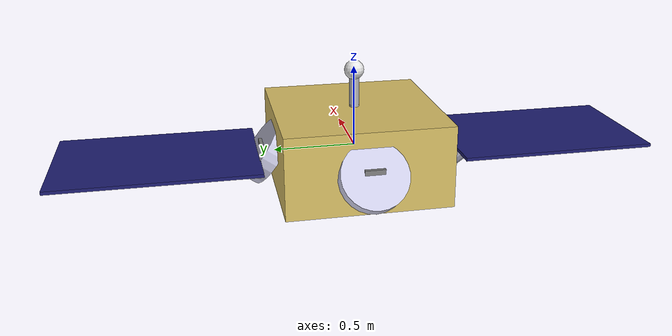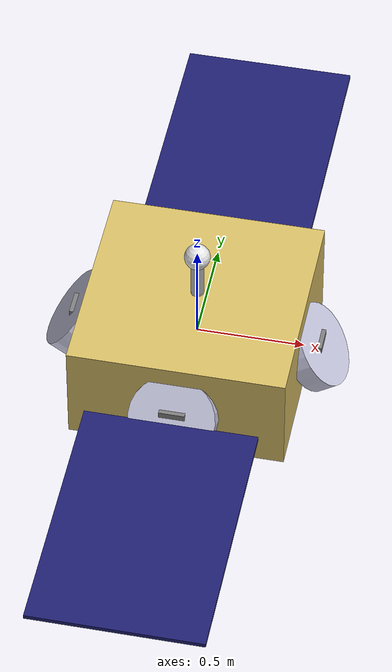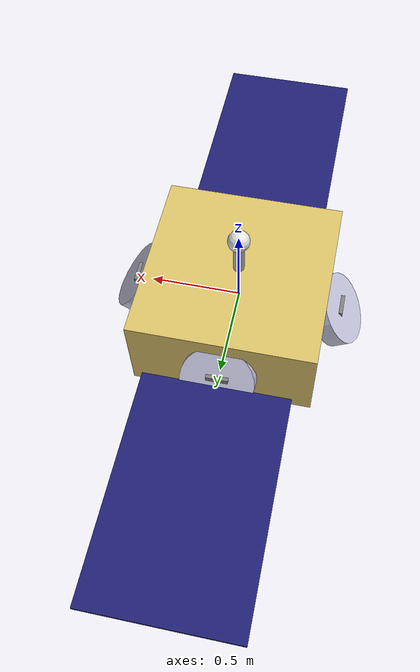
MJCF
<mujoco model="satellite_large">
  <compiler angle="radian" autolimits="true"/>
  <option gravity="0 0 0" timestep="0.001"/>

  <default>
    <joint damping="0.1" armature="0.01"/>
    <geom contype="0" conaffinity="0"/>
  </default>

  <worldbody>
    <light name="key" pos="3 -3 5" dir="-0.4 0.4 -0.7"
           diffuse="0.9 0.9 0.9" ambient="0.3 0.3 0.3" directional="true"/>
    <light name="fill" pos="-3 3 2" dir="0.4 -0.4 -0.3"
           diffuse="0.4 0.4 0.5" directional="true"/>

    <body name="satellite" pos="0 0 0">
      <freejoint name="root"/>

      <!-- Bus structure -->
      <geom name="bus" type="box" size="0.5 0.5 0.25" mass="500"
            rgba="0.85 0.75 0.4 1"/>

      <!-- Solar panels -->
      <geom name="panel_port" type="box" pos="0 -1.2 0"
            size="0.4 0.6 0.01" mass="5" rgba="0.12 0.12 0.45 0.9"/>
      <geom name="panel_starboard" type="box" pos="0 1.2 0"
            size="0.4 0.6 0.01" mass="5" rgba="0.12 0.12 0.45 0.9"/>

      <!-- Antenna mast -->
      <geom name="antenna" type="cylinder" pos="0 0 0.35"
            size="0.03 0.1" mass="1" rgba="0.7 0.7 0.7 1"/>
      <geom name="antenna_dish" type="sphere" pos="0 0 0.48"
            size="0.06" mass="0.5" rgba="0.9 0.9 0.9 1"/>

      <!-- Solar-panel normal sensor (for sun-pointing reward) -->
      <site name="solar_normal" pos="0 0 0.26" type="sphere" size="0.03"
            rgba="1 1 0 1"/>

      <body name="cmg1_gimbal" pos="0.55 0 0">
        <joint name="gimbal1" type="hinge" axis="0 1 0" damping="0.5"/>
        <geom name="cmg1_bracket" type="box" size="0.04 0.06 0.06"
              mass="1" rgba="0.5 0.5 0.5 1"/>
        <body name="cmg1_rotor">
          <joint name="rotor1" type="hinge" axis="0.8165 0 0.5774"/>
          <geom name="cmg1_disk" type="cylinder"
                fromto="-0.041 0 -0.029 0.041 0 0.029"
                size="0.2" mass="10" rgba="0.8 0.8 0.9 1"/>
          <geom name="cmg1_stripe" type="capsule"
                fromto="0 -0.18 0 0 0.18 0"
                size="0.012" mass="0.001" rgba="0.9 0.15 0.15 1"/>
        </body>
      </body>

      <body name="cmg2_gimbal" pos="0 0.55 0">
        <joint name="gimbal2" type="hinge" axis="-1 0 0" damping="0.5"/>
        <geom name="cmg2_bracket" type="box" size="0.06 0.04 0.06"
              mass="1" rgba="0.5 0.5 0.5 1"/>
        <body name="cmg2_rotor">
          <joint name="rotor2" type="hinge" axis="0 0.8165 0.5774"/>
          <geom name="cmg2_disk" type="cylinder"
                fromto="0 -0.041 -0.029 0 0.041 0.029"
                size="0.2" mass="10" rgba="0.8 0.8 0.9 1"/>
          <geom name="cmg2_stripe" type="capsule"
                fromto="-0.18 0 0 0.18 0 0"
                size="0.012" mass="0.001" rgba="0.9 0.15 0.15 1"/>
        </body>
      </body>

      <body name="cmg3_gimbal" pos="-0.55 0 0">
        <joint name="gimbal3" type="hinge" axis="0 -1 0" damping="0.5"/>
        <geom name="cmg3_bracket" type="box" size="0.04 0.06 0.06"
              mass="1" rgba="0.5 0.5 0.5 1"/>
        <body name="cmg3_rotor">
          <joint name="rotor3" type="hinge" axis="-0.8165 0 0.5774"/>
          <geom name="cmg3_disk" type="cylinder"
                fromto="0.041 0 -0.029 -0.041 0 0.029"
                size="0.2" mass="10" rgba="0.8 0.8 0.9 1"/>
          <geom name="cmg3_stripe" type="capsule"
                fromto="0 -0.18 0 0 0.18 0"
                size="0.012" mass="0.001" rgba="0.9 0.15 0.15 1"/>
        </body>
      </body>

      <body name="cmg4_gimbal" pos="0 -0.55 0">
        <joint name="gimbal4" type="hinge" axis="1 0 0" damping="0.5"/>
        <geom name="cmg4_bracket" type="box" size="0.06 0.04 0.06"
              mass="1" rgba="0.5 0.5 0.5 1"/>
        <body name="cmg4_rotor">
          <joint name="rotor4" type="hinge" axis="0 -0.8165 0.5774"/>
          <geom name="cmg4_disk" type="cylinder"
                fromto="0 0.041 -0.029 0 -0.041 0.029"
                size="0.2" mass="10" rgba="0.8 0.8 0.9 1"/>
          <geom name="cmg4_stripe" type="capsule"
                fromto="-0.18 0 0 0.18 0 0"
                size="0.012" mass="0.001" rgba="0.9 0.15 0.15 1"/>
        </body>
      </body>
    </body>
  </worldbody>

  <actuator>
    <!-- Gimbal rate servos (RL controls these) -->
    <velocity name="gimbal1_act" joint="gimbal1" kv="100"/>
    <velocity name="gimbal2_act" joint="gimbal2" kv="100"/>
    <velocity name="gimbal3_act" joint="gimbal3" kv="100"/>
    <velocity name="gimbal4_act" joint="gimbal4" kv="100"/>
    <!-- Rotor spin servos (held at constant speed) -->
    <velocity name="rotor1_act" joint="rotor1" kv="50"/>
    <velocity name="rotor2_act" joint="rotor2" kv="50"/>
    <velocity name="rotor3_act" joint="rotor3" kv="50"/>
    <velocity name="rotor4_act" joint="rotor4" kv="50"/>
  </actuator>
</mujoco>
